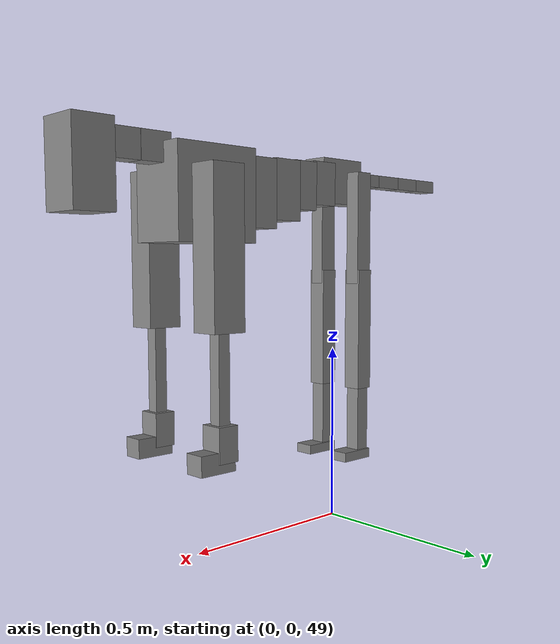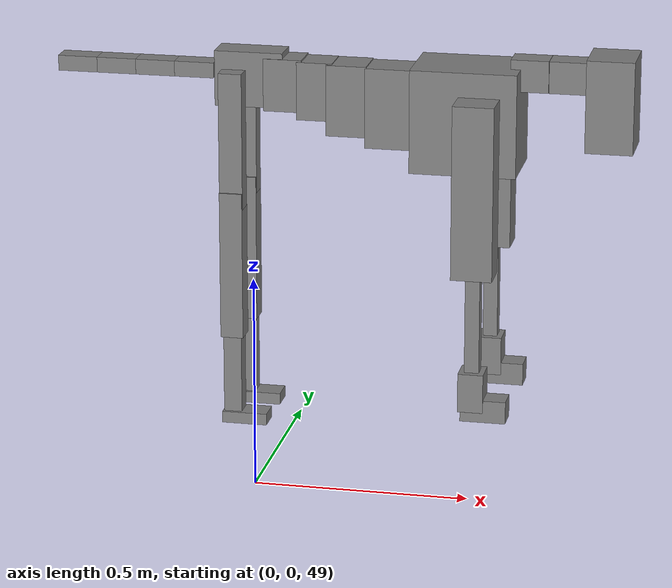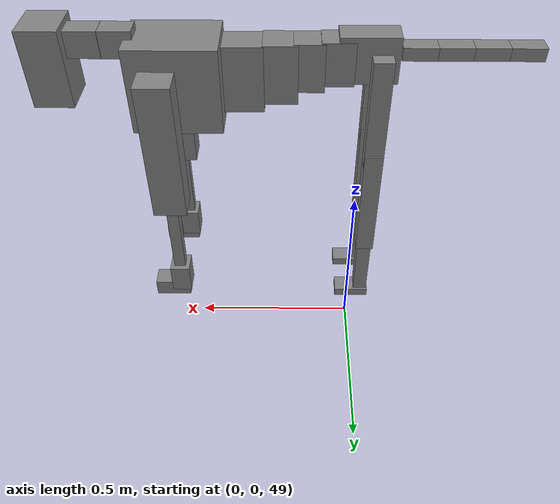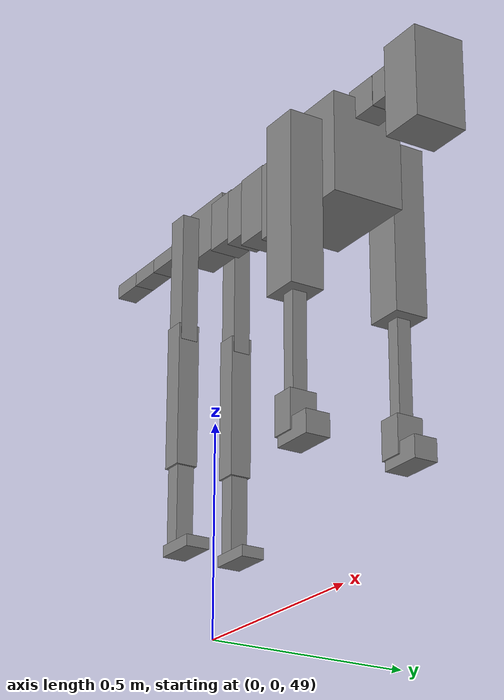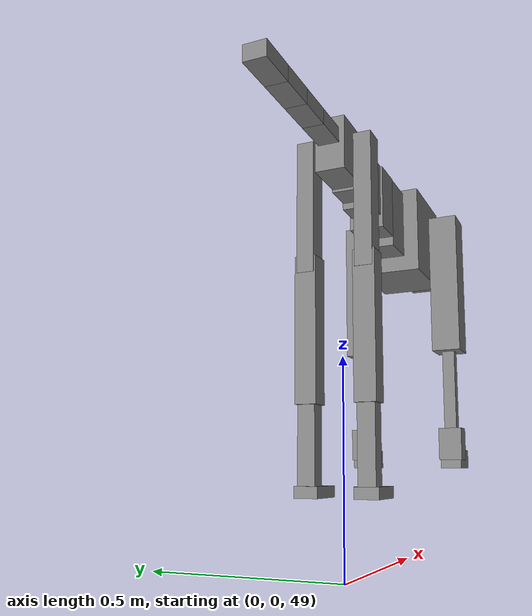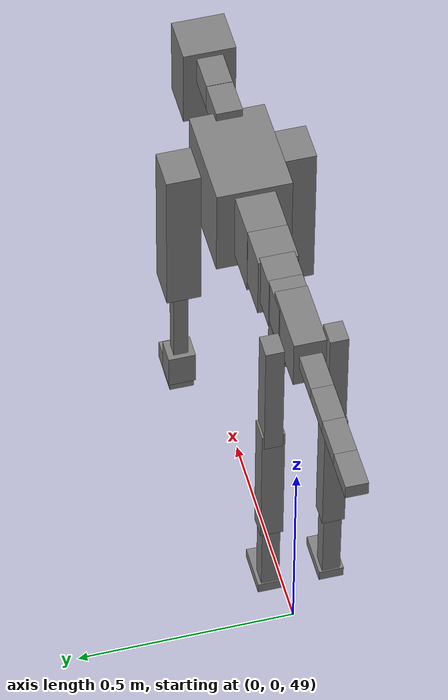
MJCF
<mujoco model="dog">

    <default>
        <joint armature="0.02" stiffness="1" damping="0.2" limited="true"/>
        <geom condim="3" friction="1 0.05 0.05" margin="0.01"/>
        <motor ctrllimited="true" ctrlrange="-1.0 1.0" forcelimited="true" gear="50"/>
    </default>

    <compiler inertiafromgeom="true" angle="radian"/>

    <option timestep="0.016" iterations="50" tolerance="1e-10" solver="Newton" jacobian="dense" cone="pyramidal"/>

    <size nconmax="20000" njmax="60000" nstack="5000000"/>
    <visual>
        <map force="0.1" zfar="30"/>
        <rgba haze="0.15 0.25 0.35 1"/>
        <quality shadowsize="2048"/>
        <global offwidth="800" offheight="800"/>
    </visual>

    <asset>
        <texture type="skybox" builtin="gradient" rgb1="0.3 0.5 0.7" rgb2="0 0 0" width="512" height="512"/>
        <texture name="texplane" type="2d" builtin="checker" rgb1=".2 .3 .4" rgb2=".1 0.15 0.2" width="512" height="512"
                 mark="cross" markrgb=".8 .8 .8"/>
        <texture name="texgeom" type="cube" builtin="flat" mark="cross" width="127" height="1278" rgb1="0.8 0.6 0.4"
                 rgb2="0.8 0.6 0.4" markrgb="1 1 1" random="0.01"/>

        <material name="matplane" reflectance="0.3" texture="texplane" texrepeat="1 1" texuniform="true"/>
        <material name="matgeom" texture="texgeom" texuniform="true" rgba="0.8 0.6 .4 1"/>
    </asset>

    <worldbody>
        <geom name="floor" pos="0 0 0" size="0 0 .25" type="plane" material="matplane" condim="3"/>

        <light directional="false" diffuse=".2 .2 .2" specular="0 0 0" pos="0 0 5" dir="0 0 -1" castshadow="false"/>
        <light mode="targetbodycom" target="torso" directional="false" diffuse=".8 .8 .8" specular="0.3 0.3 0.3"
               pos="0 0 4.0" dir="0 0 -1"/>

        <body name="root" pos="0 0 50">
            <freejoint name="root_1"/>
            <geom type="box" pos="0 0 -0.02" size="0.0774  0.0358  0.063" density="2030"/>

            <body name="spine1" pos="0.054 0 0">
                <joint name="spine1_y" axis="0 1 0" range="0 0.7" limited="true"/>
                <geom type="box" pos="0.02375 0 -0.03" size="0.04375  0.0375  0.05985" density="2030"/>

                <body name="spine2" pos="0.0612 0 0">
                    <joint name="spine2_y" axis="0 1 0" range="-0.15 0.15" limited="true"/>
                    <geom type="box" pos="0.03555  0  -0.04" size="0.04055  0.039  0.06615" density="2030"/>

                    <body name="spine3" pos="0.0730 0 0">
                        <joint name="spine3_y" axis="0 1 0" range="-0.15 0.15" limited="true"/>
                        <geom type="box" pos="0.03555  0  -0.057" size="0.04555  0.0445  0.081" density="2030"/>

                        <body name="spine4" pos="0.0780 0 0">
                            <joint name="spine4_y" axis="0 1 0" range="-0.15 0.15" limited="true"/>
                            <geom type="box" pos="0.05265  0  -0.07" size="0.05265  0.045  0.09135" density="2030"/>

                            <body name="torso" pos="0.1082 0 0">
                                <joint name="torso_y" axis="0 1 0" range="-0.15 0.15" limited="true"/>
                                <geom type="box" pos="0.11925  0  -0.085" size="0.11925  0.085  0.11745"
                                      density="2030"/>

                                <body name="neck1" pos="0.2160  0   0.0180">
                                    <joint name="neck1_y" axis="0 1 0" range="-1.2  -1" limited="true"/>
                                    <geom type="box" pos="0.0423  0  0" size="0.0423  0.03  0.036" density="2325"/>

                                    <body name="neck2" pos="0.0853  0  0">
                                        <joint name="neck2_y" axis="0 1 0" range="0.1  0" limited="true"/>
                                        <geom type="box" pos="0.0423  0  0" size="0.0423  0.03  0.036" density="2325"/>

                                        <body name="head" pos="0.0853  0  0">
                                            <joint name="head_y" axis="0 1 0" range="-0.3  -0.2" limited="true"/>
                                            <geom type="box" pos="0.0531  0  -0.055" size="0.0531  0.06  0.1044"
                                                  density="4030"/>

                                        </body>
                                    </body>
                                </body>

                                <body name="front_shoulder" pos="0.156  0   -0.0480">
                                    <joint name="front_shoulder_y" axis="0 1 0" range="-1 1.5" limited="true"/>
                                    <geom type="box" pos="0 0.13 -0.1711" size="0.0461  0.0394  0.1978" density="1158"/>
                                    <geom type="box" pos="0 -0.13 -0.1711" size="0.0461  0.0394  0.1978"
                                          density="1158"/>

                                    <body name="front_elbow" pos="0  0  -0.3422">
                                        <joint name="front_elbow_y" axis="0 1 0" range="-2 0" limited="true"/>
                                        <geom type="box" pos="0 0.13 -0.1305" size="0.0164  0.0168  0.1305"
                                              density="1081"/>
                                        <geom type="box" pos="0 -0.13 -0.1305" size="0.0164  0.0168  0.1305"
                                              density="1081"/>

                                        <body name="front_wrist" pos="0  0  -0.2610">
                                            <joint name="front_wrist_y" axis="0 1 0" range="-0.2 0" limited="true"/>
                                            <geom type="box" pos="0 0.13 -0.0313" size="0.0284  0.0316  0.0445"
                                                  density="1664"/>
                                            <geom type="box" pos="0 -0.13 -0.0313" size="0.0284  0.0316  0.0445"
                                                  density="1664"/>

                                            <body name="front_finger_end" pos="0  0  -0.0627">
                                                <joint name="front_finger_y" axis="0 1 0" range="-0.4 1"
                                                       limited="true"/>
                                                <geom type="box" pos="0.0280  0.13  -0.0105"
                                                      size="0.0513  0.0280  0.0255" density="1515"/>
                                                <geom type="box" pos="0.0280  -0.13  -0.0105"
                                                      size="0.0513  0.0280  0.0255" density="1515"/>

                                            </body>

                                        </body>
                                    </body>
                                </body>

                            </body>
                        </body>
                    </body>
                </body>
            </body>

            <body name="back_hip" pos="-0.03 0 -0.018">
                <joint name="back_hip_y" axis="0 1 0" range="-1.5 0.3" limited="true"/>
                <geom type="box" pos="0 0.07 -0.1341" size="0.0265  0.0208  0.1569" density="1154"/>
                <geom type="box" pos="0 -0.07 -0.1341" size="0.0265  0.0208  0.1569" density="1154"/>

                <body name="back_knee" pos="0  0  -0.2681">
                    <joint name="back_knee_y" axis="0 1 0" range="0 2.8" limited="true"/>
                    <geom type="box" pos="0 0.07 -0.1546" size="0.0259  0.0255  0.1702" density="1227"/>
                    <geom type="box" pos="0 -0.07 -0.1546" size="0.0259  0.0255  0.1702" density="1227"/>

                    <body name="back_ankle" pos="0  0  -0.3093">
                        <joint name="back_ankle_y" axis="0 1 0" range="-2.2 0" limited="true"/>
                        <geom type="box" pos="0 0.07 -0.1049" size="0.0205  0.0205  0.1162" density="1284"/>
                        <geom type="box" pos="0 -0.07 -0.1049" size="0.0205  0.0205  0.1162" density="1284"/>

                        <body name="back_toe_end" pos="0  0  -0.2098">
                            <joint name="back_toe_y" axis="0 1 0" range="-0.4 1" limited="true"/>
                            <geom type="box" pos="0.0281  0.07  0.0018" size="0.0516  0.0281  0.0132" density="1515"/>
                            <geom type="box" pos="0.0281  -0.07  0.0018" size="0.0516  0.0281  0.0132" density="1515"/>

                        </body>
                    </body>
                </body>
            </body>

            <body name="tail1" pos="-0.074 0 -0.006">
                <joint name="tail1_y" axis="0 1 0" range="-0.2 0.2" limited="true"/>
                <geom type="box" pos="-0.0536  0  0" size="0.045  0.025  0.0175" density="1587"/>

                <body name="tail2" pos="-0.09 0 0">
                    <joint name="tail2_y" axis="0 1 0" range="-0.2 0.2" limited="true"/>
                    <geom type="box" pos="-0.0536  0  0" size="0.045  0.025  0.0175" density="1587"/>

                    <body name="tail3" pos="-0.09 0 0">
                        <joint name="tail3_y" axis="0 1 0" range="-0.2 0.2" limited="true"/>
                        <geom type="box" pos="-0.0536  0  0" size="0.045  0.025  0.0175" density="1587"/>

                        <body name="tail4" pos="-0.09 0 0">
                            <joint name="tail4_y" axis="0 1 0" range="-0.2 0.2" limited="true"/>
                            <geom type="box" pos="-0.0536  0  0" size="0.045  0.025  0.0175" density="1587"/>

                        </body>
                    </body>
                </body>
            </body>
        </body>
    </worldbody>

    <actuator>
        <motor joint="spine1_y" forcerange="-150 150     "/>
        <motor joint="spine2_y" forcerange="-150 150     "/>
        <motor joint="spine3_y" forcerange="-150 150     "/>
        <motor joint="spine4_y" forcerange="-150 150     "/>
        <motor joint="torso_y" forcerange="-150 150     "/>
        <motor joint="neck1_y" forcerange="-100 100       "/>
        <motor joint="neck2_y" forcerange="-100 100       "/>
        <motor joint="head_y" forcerange="-150 150       "/>
        <motor joint="front_shoulder_y" forcerange="-193.69 168.79"/>
        <motor joint="front_elbow_y" forcerange="-101.30 120.81"/>
        <motor joint="front_wrist_y" forcerange="-148.58 104.04"/>
        <motor joint="front_finger_y" forcerange="-46.05 63.14"/>
        <motor joint="back_hip_y" forcerange="-204.88 272.57"/>
        <motor joint="back_knee_y" forcerange="-207.23 363.40"/>
        <motor joint="back_angle_y" forcerange="-111.91 115.85"/>
        <motor joint="back_toe_y" forcerange="-44.23 100.77"/>
        <motor joint="tail1_y" forcerange="-50 50     "/>
        <motor joint="tail2_y" forcerange="-50 50     "/>
        <motor joint="tail3_y" forcerange="-50 50     "/>
        <motor joint="tail4_y" forcerange="-50 50     "/>
    </actuator>
</mujoco>
